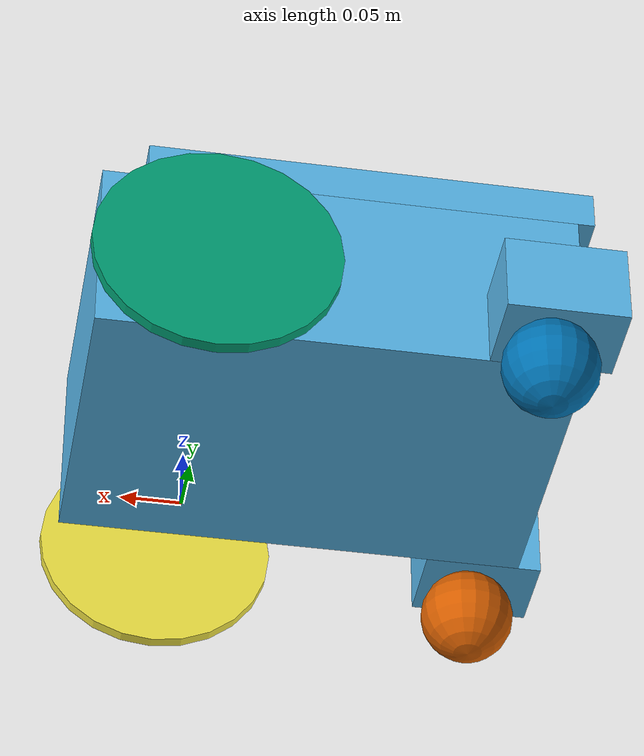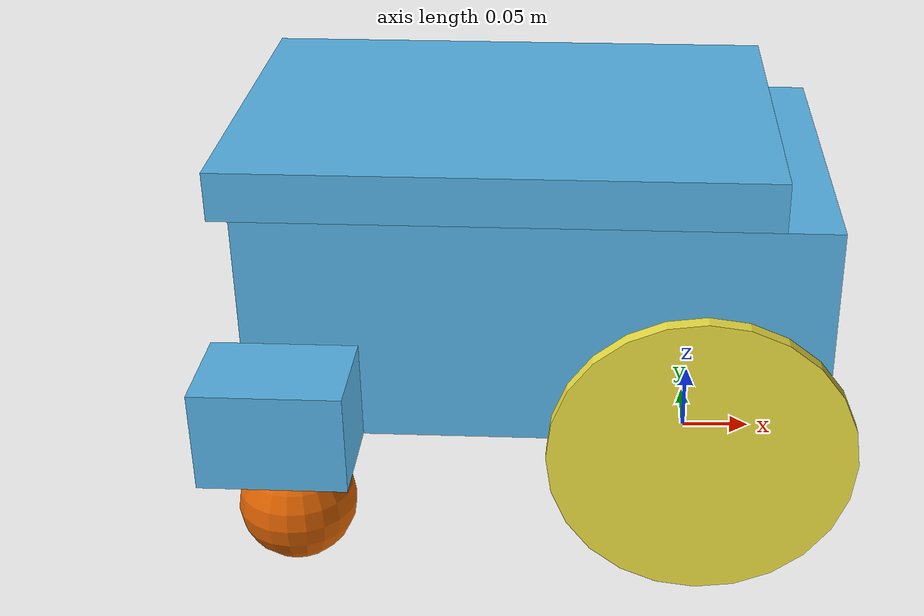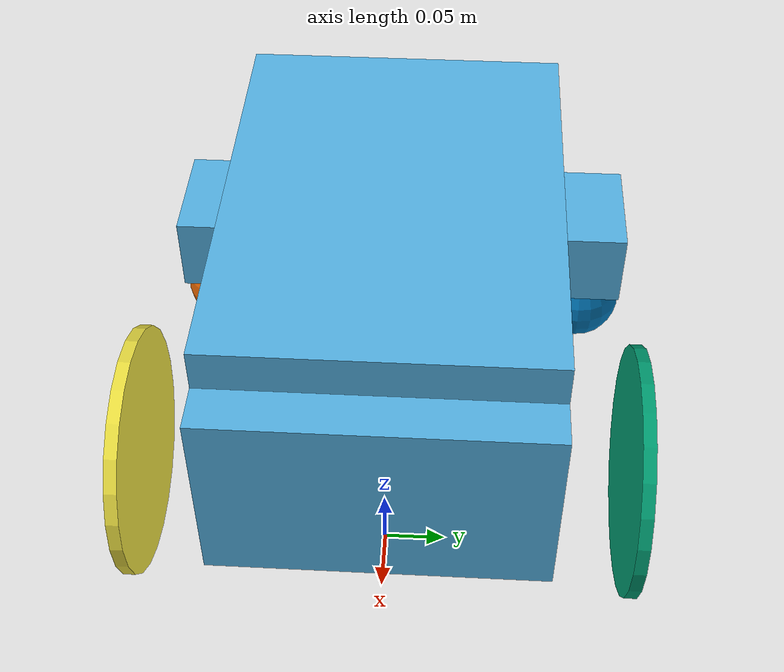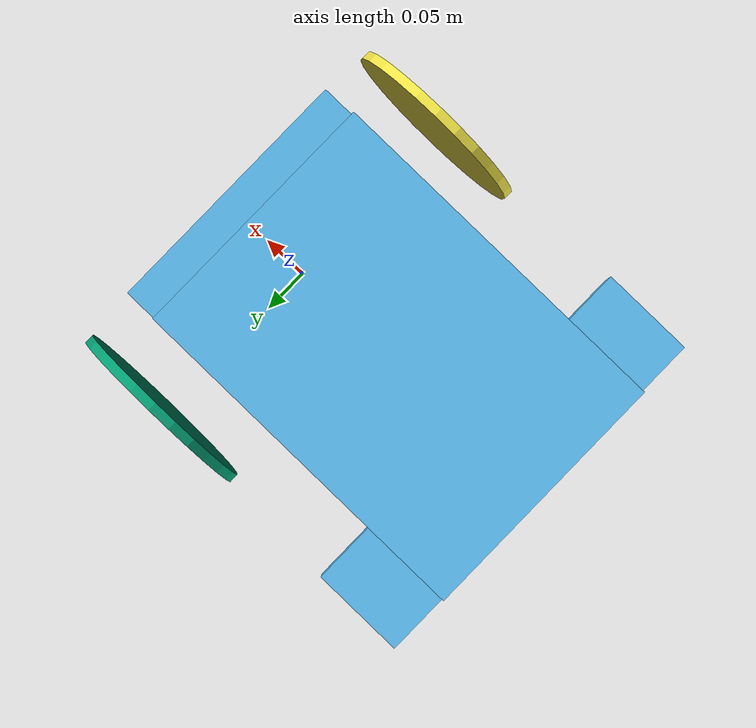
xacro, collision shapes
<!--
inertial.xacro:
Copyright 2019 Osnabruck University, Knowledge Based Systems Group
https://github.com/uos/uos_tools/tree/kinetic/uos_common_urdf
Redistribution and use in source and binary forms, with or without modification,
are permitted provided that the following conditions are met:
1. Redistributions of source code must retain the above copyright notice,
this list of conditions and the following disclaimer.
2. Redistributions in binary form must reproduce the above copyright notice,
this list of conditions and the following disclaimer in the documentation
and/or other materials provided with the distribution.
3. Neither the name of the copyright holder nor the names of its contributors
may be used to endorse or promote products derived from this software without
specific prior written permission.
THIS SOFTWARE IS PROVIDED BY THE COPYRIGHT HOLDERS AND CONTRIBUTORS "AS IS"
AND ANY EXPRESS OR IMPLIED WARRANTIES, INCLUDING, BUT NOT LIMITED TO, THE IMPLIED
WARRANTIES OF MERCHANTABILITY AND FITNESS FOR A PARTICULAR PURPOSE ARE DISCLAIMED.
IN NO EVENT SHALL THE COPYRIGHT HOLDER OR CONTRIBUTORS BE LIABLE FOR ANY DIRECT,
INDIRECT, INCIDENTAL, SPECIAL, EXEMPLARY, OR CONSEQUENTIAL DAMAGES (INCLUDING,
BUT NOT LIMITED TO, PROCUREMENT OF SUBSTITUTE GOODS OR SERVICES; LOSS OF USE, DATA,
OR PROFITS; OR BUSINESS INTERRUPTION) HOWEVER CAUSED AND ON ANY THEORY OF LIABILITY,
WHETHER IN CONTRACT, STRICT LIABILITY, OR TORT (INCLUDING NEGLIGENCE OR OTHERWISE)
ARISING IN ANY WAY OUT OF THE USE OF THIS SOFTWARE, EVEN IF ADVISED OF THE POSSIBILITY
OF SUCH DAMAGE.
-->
<?xml version="1.0" encoding='UTF-8'?>
<robot xmlns:xacro="http://www.ros.org/wiki/xacro">

  <xacro:property name="wheel_r" value="0.1" />
  <xacro:property name="wheel_xpos" value="0.11" />
  <xacro:include filename="$(find magni_description)/urdf/inertial.xacro" />

  <xacro:macro name="low_friction">
    <collision>
      <surface>
        <friction>
          <ode>
            <mu>0.1</mu>
            <mu2>0.1</mu2>
            <slip1>0</slip1>
            <slip2>0</slip2>
          </ode>
        </friction>
      </surface>
      <max_contacts>1</max_contacts>
    </collision>
  </xacro:macro>

  <xacro:macro name="high_friction">
    <collision>
      <surface>
        <friction>
          <ode>
            <mu>1.0</mu>
            <mu2>1.0</mu2>
            <fdir1>0 0 1</fdir1>
            <slip1>0.0</slip1>
            <slip2>0.0</slip2>
          </ode>
        </friction>
      </surface>
      <max_contacts>1</max_contacts>
    </collision>
  </xacro:macro>

  <link name="base_footprint"/>
  <joint name="base_footprint_joint" type="fixed">
    <parent link="base_footprint"/>
    <child link="base_link"/>
    <origin xyz="0 0 ${wheel_r}" rpy="0 0 0"/>
  </joint>
  <!-- Base Link -->
  <link name="base_link">
    <origin xyz="-0.25 0 ${0.03}" rpy="0 0 0" />

    <visual>
      <origin xyz="${-wheel_xpos} 0 ${-wheel_r+0.071}" rpy="0 0 0" />
      <geometry>
        <mesh filename="file://$(find magni_description)/meshes/magni_body.dae" />
      </geometry>
    </visual>

    <collision>
      <origin xyz="${-wheel_xpos} 0 ${-wheel_r+0.151}" rpy="0 0 0" />
      <geometry>
        <box size="0.398 0.268 0.160"/>
      </geometry>
    </collision>

    <collision>
      <origin xyz="${-wheel_xpos-0.026} 0 ${-wheel_r+0.248}" rpy="0 0 0" />
      <geometry>
        <box size="0.375 0.268 0.034"/>
      </geometry>
    </collision>

    <collision>
      <origin xyz="${-wheel_xpos-0.169} 0.169 ${-wheel_r+0.106}" rpy="0 0 0" />
      <geometry>
        <box size="0.1 0.07 0.07"/>
      </geometry>
    </collision>

    <collision>
      <origin xyz="${-wheel_xpos-0.169} -0.169 ${-wheel_r+0.106}" rpy="0 0 0" />
      <geometry>
        <box size="0.1 0.07 0.07"/>
      </geometry>
    </collision>

    <xacro:box_inertial_with_origin x="0.398" y="0.221" z="0.150" mass="10.0">
      <origin xyz="-0.15 0 0.03" rpy="0 0 0" />
    </xacro:box_inertial_with_origin>
  </link>

  <gazebo reference="base_link">
    <xacro:low_friction/>
  </gazebo>

  <!-- Macro for defining wheels -->
  <xacro:macro name="wheel" params="prefix reflect">
    <link name="${prefix}_wheel">

      <collision>
        <origin xyz="${0.033*reflect} 0 0" rpy="0 ${pi/2} 0" />
        <geometry>
          <cylinder radius="${wheel_r}" length="0.01"/>
        </geometry>
      </collision>

      <visual>
        <origin xyz="${-0.071*reflect} 0 0" rpy="0 ${(reflect-1)*pi/2} 0" />
        <geometry>
          <mesh filename="file://$(find magni_description)/meshes/front_wheel.dae" />
        </geometry>
      </visual>

      <xacro:cylinder_inertial_with_origin radius="${wheel_r}" length="0.05" mass="1.34">
        <origin xyz="0 0 0" rpy="0 ${pi/2} 0" />
      </xacro:cylinder_inertial_with_origin>
    </link>

    <joint name="${prefix}_wheel_joint" type="continuous">
      <axis xyz="1 0 0" rpy="0 0 0" />
      <parent link="base_link"/>
      <child link="${prefix}_wheel"/>
      <origin xyz="0 ${0.163*reflect} 0" rpy="0 0 ${pi/2}"/>
      <dynamics damping="0.2" friction="0.8"/>
      <limit effort="1000" velocity="10"/>
    </joint>

    <gazebo reference="${prefix}_wheel">
      <xacro:high_friction/>
    </gazebo>

  </xacro:macro>

  <!--- create wheels -->
  <xacro:wheel prefix="left" reflect="1"/>
  <xacro:wheel prefix="right" reflect="-1"/>

  <!-- Macro for defining caster wheels -->
  <xacro:macro name="caster_wheel" params="prefix reflect">
    <link name="${prefix}_caster_wheel">
      <origin xyz="-0.37 ${reflect*0.169} ${-wheel_r+0.04}" rpy="0 0 0" />
      <collision>

        <origin xyz="-0.27 ${reflect*0.169} ${-wheel_r+0.04}" rpy="0 0 0" />
        <geometry>
          <sphere radius="0.04"/>
        </geometry>

      </collision>
      <visual>
        <origin xyz="-0.25 ${reflect*0.169} 0" rpy="0 0 ${pi}" />

        <geometry>
          <mesh filename="file://$(find magni_description)/meshes/caster_wheel.dae" />
        </geometry>
      </visual>

    </link>

    <joint name="${prefix}_caster_wheel_joint" type="fixed">
      <parent link="base_link"/>
      <child link="${prefix}_caster_wheel"/>
    </joint>

    <gazebo reference="${prefix}_caster_wheel">
      <xacro:low_friction/>
    </gazebo>

  </xacro:macro>

  <!-- and caster wheels )-->
  <xacro:caster_wheel prefix="left" reflect="1"/>
  <xacro:caster_wheel prefix="right" reflect="-1"/>

</robot>

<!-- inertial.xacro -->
<robot xmlns:xacro="http://wiki.ros.org/xacro">
    <xacro:property name="M_PI" value="3.1415926535897931" />

    <!-- see https://secure.wikimedia.org/wikipedia/en/wiki/List_of_moment_of_inertia_tensors -->

    <!-- #################### versions without origin #################### -->
    <xacro:macro name="sphere_inertial" params="radius mass">
        <inertial>
            <mass value="${mass}" />
            <origin xyz="0 0 0" />
            <inertia ixx="${0.4 * mass * radius * radius}" ixy="0.0" ixz="0.0" iyy="${0.4 * mass * radius * radius}" iyz="0.0" izz="${0.4 * mass * radius * radius}" />
        </inertial>
    </xacro:macro>

    <xacro:macro name="cylinder_inertial" params="radius length mass">
        <inertial>
            <mass value="${mass}" />
            <origin xyz="0 0 0" />
            <inertia ixx="${0.0833333 * mass * (3 * radius * radius + length * length)}" ixy="0.0" ixz="0.0" iyy="${0.0833333 * mass * (3 * radius * radius + length * length)}" iyz="0.0" izz="${0.5 * mass * radius * radius}" />
        </inertial>
    </xacro:macro>

    <xacro:macro name="box_inertial" params="x y z mass">
        <inertial>
            <mass value="${mass}" />
            <origin xyz="-0.15 0 0.03" />
            <inertia ixx="${0.0833333 * mass * (y*y + z*z)}" ixy="0.0" ixz="0.0" iyy="${0.0833333 * mass * (x*x + z*z)}" iyz="0.0" izz="${0.0833333 * mass * (x*x + y*y)}" />
        </inertial>
    </xacro:macro>

    <!-- #################### versions with origin #################### -->
    <xacro:macro name="sphere_inertial_with_origin" params="radius mass *origin">
        <inertial>
            <mass value="${mass}" />
            <xacro:insert_block name="origin" />
            <inertia ixx="${0.4 * mass * radius * radius}" ixy="0.0" ixz="0.0" iyy="${0.4 * mass * radius * radius}" iyz="0.0" izz="${0.4 * mass * radius * radius}" />
        </inertial>
    </xacro:macro>

    <xacro:macro name="cylinder_inertial_with_origin" params="radius length mass *origin">
        <inertial>
            <mass value="${mass}" />
            <xacro:insert_block name="origin" />
            <inertia ixx="${0.0833333 * mass * (3 * radius * radius + length * length)}" ixy="0.0" ixz="0.0" iyy="${0.0833333 * mass * (3 * radius * radius + length * length)}" iyz="0.0" izz="${0.5 * mass * radius * radius}" />
        </inertial>
    </xacro:macro>

    <xacro:macro name="box_inertial_with_origin" params="x y z mass *origin">
        <inertial>
            <mass value="${mass}" />
            <xacro:insert_block name="origin" />
            <inertia ixx="${0.0833333 * mass * (y*y + z*z)}" ixy="0.0" ixz="0.0" iyy="${0.0833333 * mass * (x*x + z*z)}" iyz="0.0" izz="${0.0833333 * mass * (x*x + y*y)}" />
        </inertial>
    </xacro:macro>

</robot>
